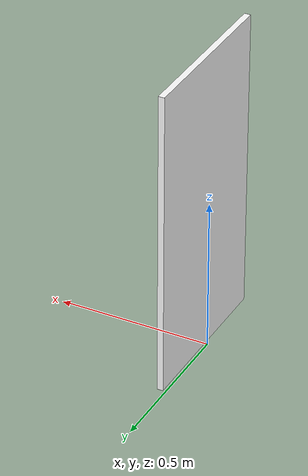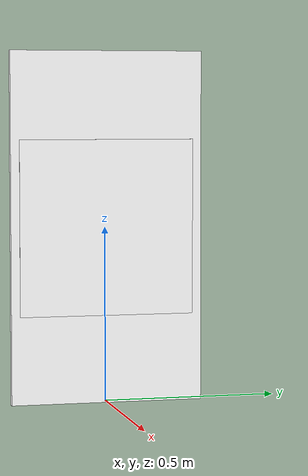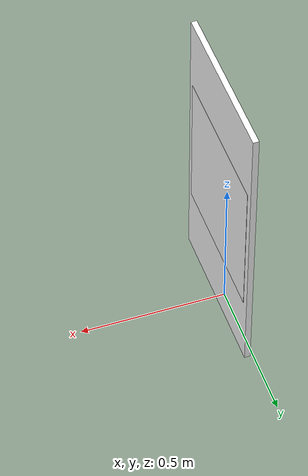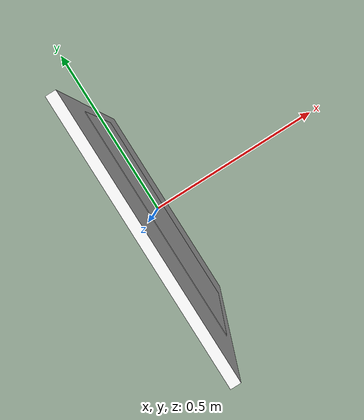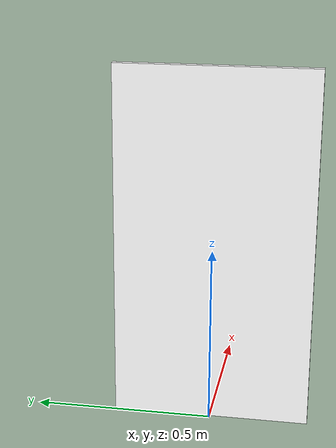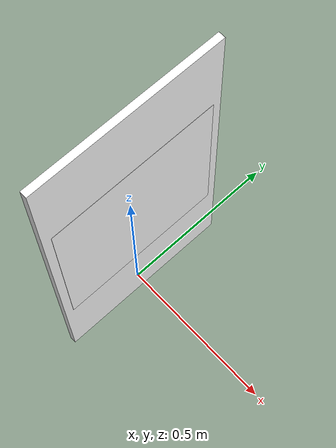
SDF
<?xml version="1.0"?>
<sdf version="1.8">
  <model name="aruco_3">
    <static>true</static>
    <link name="link">
      <visual name="board_visual">
        <pose>0.02 0 0.5 0 0 0</pose>
        <geometry>
          <box>
            <size>0.02 0.55 1.0</size>
          </box>
        </geometry>
        <material>
          <ambient>1 1 1 1</ambient>
          <diffuse>1 1 1 1</diffuse>
        </material>
      </visual>
      <collision name="board_collision">
        <pose>0.02 0 0.5 0 0 0</pose>
        <geometry>
          <box>
            <size>0.02 0.55 1</size>
          </box>
        </geometry>
      </collision>

      <visual name="marker_visual">
        <pose>0.031 0 0.5 0 0 0</pose>
        <geometry>
          <box>
            <size>0.001 0.5 0.5</size>
          </box>
        </geometry>
        <material>
          <diffuse>1 1 1 1</diffuse>
          <pbr>
            <metal>
              <albedo_map>textures/marker_42.png</albedo_map>
            </metal>
          </pbr>
        </material>
      </visual>
    </link>
  </model>
</sdf>
